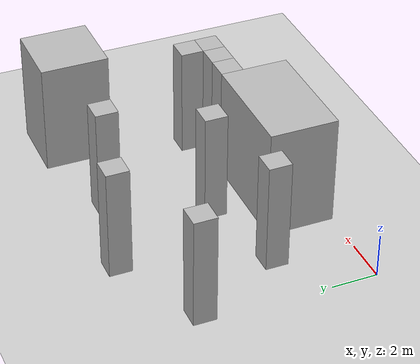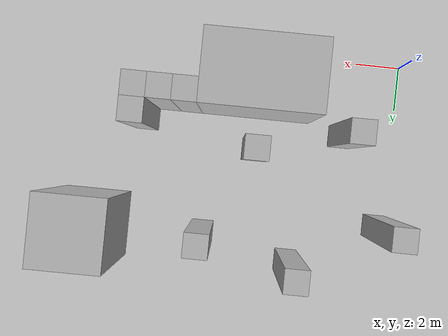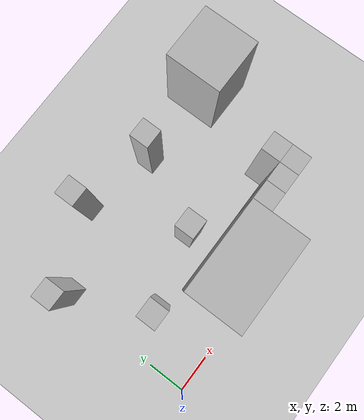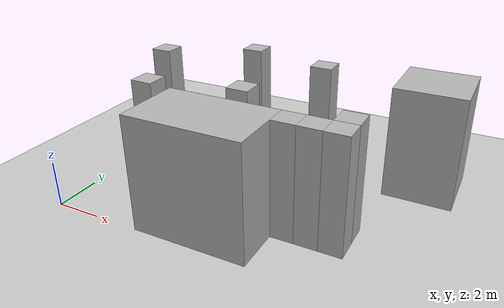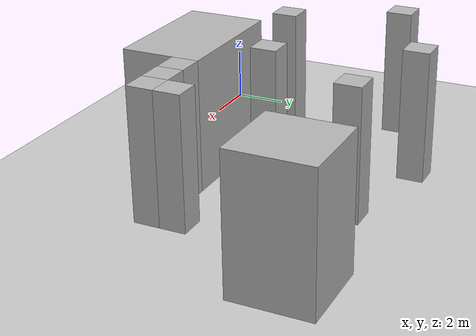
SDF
<?xml version="1.0" ?>
<sdf version="1.5">
  <world name="default">
    <!-- A global light source -->
    <include>
      <uri>model://sun</uri>
    </include>
    <!-- A ground plane -->
    <include>
      <uri>model://ground_plane</uri>
    </include>
    <model name="obstacle0">
      <pose>6.5 1.5 2.5  0 0 0</pose>
      <static>true</static>
      <link name="link">
	<collision name="collision">
          <geometry>
            <box>
	      <size>5 3 5</size>
            </box>
          </geometry>
	</collision>
	<visual name="visual">
          <geometry>
            <box>
	      <size>5 3 5</size>
            </box>
	  </geometry>
	</visual>
      </link>
    </model>
    <include>
      <name>obstacle2</name>
      <pose>6.5 4.5 2.5 0.0 0.0 0.0</pose>
      <uri>model://pillar</uri>
    </include>
    <include>
      <name>obstacle3</name>
      <pose>2.5 3.5 2.5 0.0 0.0 0.0</pose>
      <uri>model://pillar</uri>
    </include>
    <include>
      <name>obstacle4</name>
      <pose>4.5 9.5 2.5 0.0 0.0 0.0</pose>
      <uri>model://pillar</uri>
    </include>
    <include>
      <name>obstacle7</name>
      <pose>8.5 8.5 2.5 0.0 0.0 0.0</pose>
      <uri>model://pillar</uri>
    </include>
    <include>
      <name>obstacle8</name>
      <pose>11.5 3.5 2.5 0.0 0.0 0.0</pose>
      <uri>model://pillar</uri>
    </include>
    <include>
      <name>obstacle9</name>
      <pose>11.5 2.5 2.5 0.0 0.0 0.0</pose>
      <uri>model://pillar</uri>
    </include>
    <include>
      <name>obstacle10</name>
      <pose>0.5 7.5 2.5 0.0 0.0 0.0</pose>
      <uri>model://pillar</uri>
    </include>
    <include>
      <name>obstacle12</name>
      <pose>9.5 2.5 2.5 0.0 0.0 0.0</pose>
      <uri>model://pillar</uri>
    </include>
    <include>
      <name>obstacle13</name>
      <pose>10.5 2.5 2.5 0.0 0.0 0.0</pose>
      <uri>model://pillar</uri>
    </include>
    <model name="obstacle15">
      <pose>13.5 8.5 2.5  0 0 0</pose>
      <static>true</static>
      <link name="link">
	<collision name="collision">
          <geometry>
            <box>
	      <size>3 3 5</size>
            </box>
          </geometry>
	</collision>
	<visual name="visual">
          <geometry>
            <box>
	      <size>3 3 5</size>
            </box>
	  </geometry>
	</visual>
      </link>
    </model>
    <physics name='default_physics' default='0' type='ode'>
      <gravity>0 0 -9.8066</gravity>
      <ode>
        <solver>
          <type>quick</type>
          <iters>10</iters>
          <sor>1.3</sor>
          <use_dynamic_moi_rescaling>0</use_dynamic_moi_rescaling>
        </solver>
        <constraints>
          <cfm>0</cfm>
          <erp>0.2</erp>
          <contact_max_correcting_vel>100</contact_max_correcting_vel>
          <contact_surface_layer>0.001</contact_surface_layer>
        </constraints>
      </ode>
      <max_step_size>0.004</max_step_size>
      <real_time_factor>1</real_time_factor>
      <real_time_update_rate>250</real_time_update_rate>
      <magnetic_field>6.0e-6 2.3e-5 -4.2e-5</magnetic_field>
    </physics>
  </world>
</sdf>

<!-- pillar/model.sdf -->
<sdf version="1.5">
  <model name="pillar">
    <pose>0 0 2.5  0 0 0</pose>
    <static>true</static>
    <link name="link">
      <collision name="collision">
        <geometry>
          <box>
	    <size>1 1 5</size>
          </box>
        </geometry>
      </collision>
      <visual name="visual">
        <geometry>
          <box>
	    <size>1 1 5</size>
          </box>
	</geometry>
      </visual>
    </link>
  </model>
</sdf>
